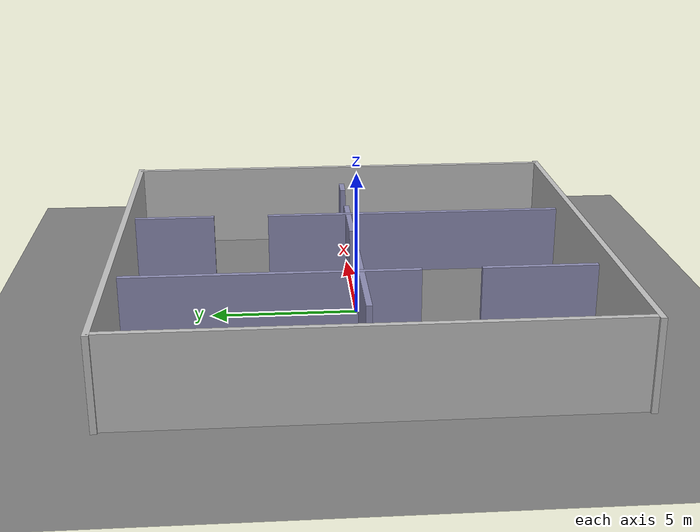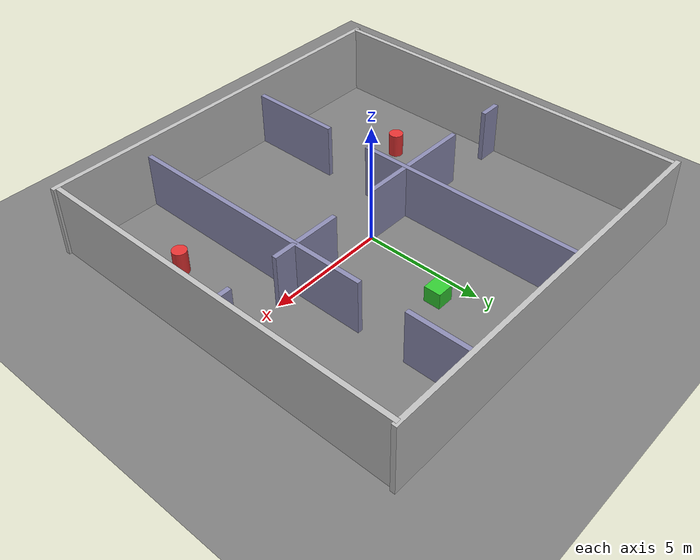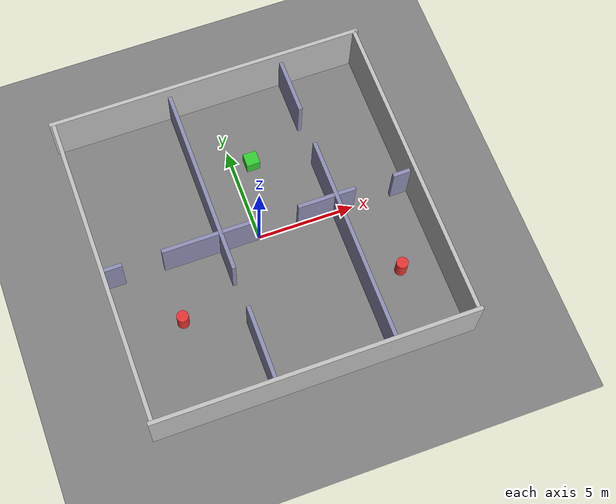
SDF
<?xml version="1.0" ?>
<sdf version="1.10">
  <world name="multi_room">

    <physics name="fast" type="ignored">
      <max_step_size>0.02</max_step_size>
      <real_time_factor>0</real_time_factor>
    </physics>

    <plugin filename="gz-sim-physics-system"       name="gz::sim::systems::Physics"/>
    <plugin filename="gz-sim-user-commands-system"  name="gz::sim::systems::UserCommands"/>
    <plugin filename="gz-sim-scene-broadcaster-system" name="gz::sim::systems::SceneBroadcaster"/>
    <plugin filename="gz-sim-sensors-system"       name="gz::sim::systems::Sensors">
      <render_engine>ogre2</render_engine>
    </plugin>
    <plugin filename="gz-sim-imu-system"           name="gz::sim::systems::Imu"/>
    <plugin filename="gz-sim-contact-system"       name="gz::sim::systems::Contact"/>

    <gravity>0 0 -9.81</gravity>

    <light type="directional" name="sun">
      <cast_shadows>true</cast_shadows>
      <pose>0 0 10 0 0 0</pose>
      <diffuse>0.9 0.9 0.9 1</diffuse>
      <specular>0.2 0.2 0.2 1</specular>
      <direction>-0.5 0.1 -0.9</direction>
    </light>

    <model name="ground_plane">
      <static>true</static>
      <link name="link">
        <collision name="collision">
          <geometry><plane><normal>0 0 1</normal><size>40 40</size></plane></geometry>
        </collision>
        <visual name="visual">
          <geometry><plane><normal>0 0 1</normal><size>40 40</size></plane></geometry>
          <material><ambient>0.4 0.4 0.4 1</ambient><diffuse>0.5 0.5 0.5 1</diffuse></material>
        </visual>
      </link>
    </model>

    <model name="building">
      <static>true</static>

      <!-- Dis duvarlar -->
      <link name="wall_n">
        <pose>0 8 1.5 0 0 0</pose>
        <collision name="c"><geometry><box><size>16.4 0.2 3</size></box></geometry></collision>
        <visual name="v"><geometry><box><size>16.4 0.2 3</size></box></geometry>
          <material><ambient>0.75 0.75 0.75 1</ambient><diffuse>0.75 0.75 0.75 1</diffuse></material></visual>
      </link>
      <link name="wall_s">
        <pose>0 -8 1.5 0 0 0</pose>
        <collision name="c"><geometry><box><size>16.4 0.2 3</size></box></geometry></collision>
        <visual name="v"><geometry><box><size>16.4 0.2 3</size></box></geometry>
          <material><ambient>0.75 0.75 0.75 1</ambient><diffuse>0.75 0.75 0.75 1</diffuse></material></visual>
      </link>
      <link name="wall_w">
        <pose>-8 0 1.5 0 0 0</pose>
        <collision name="c"><geometry><box><size>0.2 16 3</size></box></geometry></collision>
        <visual name="v"><geometry><box><size>0.2 16 3</size></box></geometry>
          <material><ambient>0.75 0.75 0.75 1</ambient><diffuse>0.75 0.75 0.75 1</diffuse></material></visual>
      </link>
      <link name="wall_e">
        <pose>8 0 1.5 0 0 0</pose>
        <collision name="c"><geometry><box><size>0.2 16 3</size></box></geometry></collision>
        <visual name="v"><geometry><box><size>0.2 16 3</size></box></geometry>
          <material><ambient>0.75 0.75 0.75 1</ambient><diffuse>0.75 0.75 0.75 1</diffuse></material></visual>
      </link>

      <!-- Tavan KALDIRILDI: odaları üstten izleyebilmek için (lidar yatay olduğundan
           davranışı etkilemez; drone z=0.6'da hover, tavan z=2.5'taydı). -->

      <!-- Sol dikey duvar (x=-2), kapi y in [-4,-2]
           Alt segment: y in [-8,-4], uzunluk=4, merkez=-6
           Ust segment: y in [-2, 8], uzunluk=10, merkez=3 -->
      <link name="lwall_bot">
        <pose>-2 -6 1.15 0 0 0</pose>
        <collision name="c"><geometry><box><size>0.2 4 2.3</size></box></geometry></collision>
        <visual name="v"><geometry><box><size>0.2 4 2.3</size></box></geometry>
          <material><ambient>0.5 0.5 0.65 1</ambient><diffuse>0.55 0.55 0.7 1</diffuse></material></visual>
      </link>
      <link name="lwall_top">
        <pose>-2 3 1.15 0 0 0</pose>
        <collision name="c"><geometry><box><size>0.2 10 2.3</size></box></geometry></collision>
        <visual name="v"><geometry><box><size>0.2 10 2.3</size></box></geometry>
          <material><ambient>0.5 0.5 0.65 1</ambient><diffuse>0.55 0.55 0.7 1</diffuse></material></visual>
      </link>

      <!-- Sag dikey duvar (x=4), kapi y in [3,5]
           Alt segment: y in [-8, 3], uzunluk=11, merkez=-2.5
           Ust segment: y in [ 5, 8], uzunluk=3,  merkez=6.5 -->
      <link name="rwall_bot">
        <pose>4 -2.5 1.15 0 0 0</pose>
        <collision name="c"><geometry><box><size>0.2 11 2.3</size></box></geometry></collision>
        <visual name="v"><geometry><box><size>0.2 11 2.3</size></box></geometry>
          <material><ambient>0.5 0.5 0.65 1</ambient><diffuse>0.55 0.55 0.7 1</diffuse></material></visual>
      </link>
      <link name="rwall_top">
        <pose>4 6.5 1.15 0 0 0</pose>
        <collision name="c"><geometry><box><size>0.2 3 2.3</size></box></geometry></collision>
        <visual name="v"><geometry><box><size>0.2 3 2.3</size></box></geometry>
          <material><ambient>0.5 0.5 0.65 1</ambient><diffuse>0.55 0.55 0.7 1</diffuse></material></visual>
      </link>

      <link name="hwall_1">
        <pose>-7.5 0 1.15 0 0 0</pose>
        <collision name="c"><geometry><box><size>1 0.2 2.3</size></box></geometry></collision>
        <visual name="v"><geometry><box><size>1 0.2 2.3</size></box></geometry>
          <material><ambient>0.5 0.5 0.65 1</ambient><diffuse>0.55 0.55 0.7 1</diffuse></material></visual>
      </link>
      <link name="hwall_2">
        <pose>-3.5 0 1.15 0 0 0</pose>
        <collision name="c"><geometry><box><size>3 0.2 2.3</size></box></geometry></collision>
        <visual name="v"><geometry><box><size>3 0.2 2.3</size></box></geometry>
          <material><ambient>0.5 0.5 0.65 1</ambient><diffuse>0.55 0.55 0.7 1</diffuse></material></visual>
      </link>
      <link name="hwall_3">
        <pose>-1 0 1.15 0 0 0</pose>
        <collision name="c"><geometry><box><size>2 0.2 2.3</size></box></geometry></collision>
        <visual name="v"><geometry><box><size>2 0.2 2.3</size></box></geometry>
          <material><ambient>0.5 0.5 0.65 1</ambient><diffuse>0.55 0.55 0.7 1</diffuse></material></visual>
      </link>
      <link name="hwall_4">
        <pose>3 0 1.15 0 0 0</pose>
        <collision name="c"><geometry><box><size>2 0.2 2.3</size></box></geometry></collision>
        <visual name="v"><geometry><box><size>2 0.2 2.3</size></box></geometry>
          <material><ambient>0.5 0.5 0.65 1</ambient><diffuse>0.55 0.55 0.7 1</diffuse></material></visual>
      </link>
      <link name="hwall_5">
        <pose>4.5 0 1.15 0 0 0</pose>
        <collision name="c"><geometry><box><size>1 0.2 2.3</size></box></geometry></collision>
        <visual name="v"><geometry><box><size>1 0.2 2.3</size></box></geometry>
          <material><ambient>0.5 0.5 0.65 1</ambient><diffuse>0.55 0.55 0.7 1</diffuse></material></visual>
      </link>
      <link name="hwall_6">
        <pose>7.5 0 1.15 0 0 0</pose>
        <collision name="c"><geometry><box><size>1 0.2 2.3</size></box></geometry></collision>
        <visual name="v"><geometry><box><size>1 0.2 2.3</size></box></geometry>
          <material><ambient>0.5 0.5 0.65 1</ambient><diffuse>0.55 0.55 0.7 1</diffuse></material></visual>
      </link>
    </model>

    <!-- Hareketli engeller — Python env tarafindan gz service ile tasinir -->
    <!-- R0 icinde, y yonunde salinar -->
    <model name="obs_moving_1">
      <static>true</static>
      <pose>-5.0 -3.0 0.5 0 0 0</pose>
      <link name="l">
        <collision name="c"><geometry><cylinder><radius>0.3</radius><length>1.0</length></cylinder></geometry></collision>
        <visual name="v"><geometry><cylinder><radius>0.3</radius><length>1.0</length></cylinder></geometry>
          <material><ambient>0.85 0.2 0.2 1</ambient><diffuse>0.9 0.2 0.2 1</diffuse></material></visual>
      </link>
    </model>

    <!-- R4 icinde, x yonunde salinar -->
    <model name="obs_moving_2">
      <static>true</static>
      <pose>1.0 4.0 0.3 0 0 0</pose>
      <link name="l">
        <collision name="c"><geometry><box><size>0.7 0.7 0.7</size></box></geometry></collision>
        <visual name="v"><geometry><box><size>0.7 0.7 0.7</size></box></geometry>
          <material><ambient>0.2 0.7 0.2 1</ambient><diffuse>0.2 0.8 0.2 1</diffuse></material></visual>
      </link>
    </model>

    <!-- R2 icinde, y yonunde salinar -->
    <model name="obs_moving_3">
      <static>true</static>
      <pose>6.0 -4.0 0.5 0 0 0</pose>
      <link name="l">
        <collision name="c"><geometry><cylinder><radius>0.3</radius><length>1.0</length></cylinder></geometry></collision>
        <visual name="v"><geometry><cylinder><radius>0.3</radius><length>1.0</length></cylinder></geometry>
          <material><ambient>0.85 0.2 0.2 1</ambient><diffuse>0.9 0.2 0.2 1</diffuse></material></visual>
      </link>
    </model>

  </world>
</sdf>
